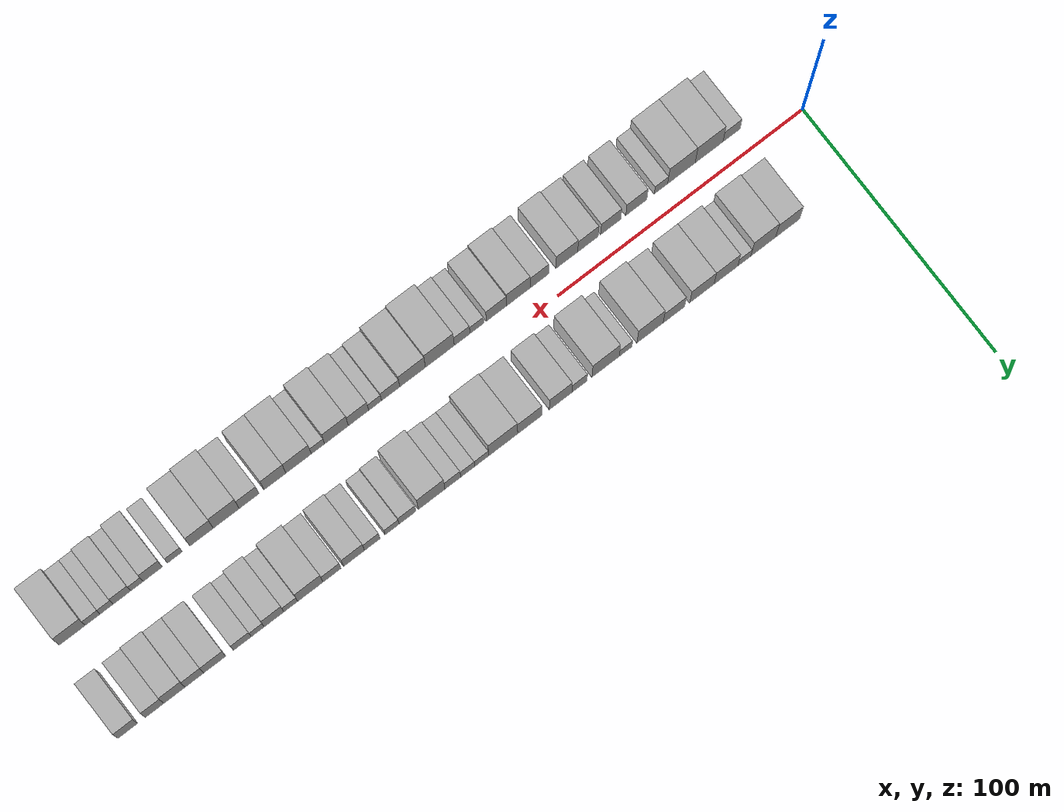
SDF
<sdf version="1.6">
 <world name="default">
  <scene>
   <sky><clouds><speed>12</speed></clouds></sky>
   <ambient>0.4 0.4 0.4 1</ambient>
   <background>0.7 0.7 0.7 1</background>
   <shadows>1</shadows>
  </scene>
  <gravity>0 0 -9.8066</gravity>
  <magnetic_field>6e-06 2.3e-05 -4.2e-05</magnetic_field>
  <physics default="0" name="default_physics" type="ode">
   <ode>
    <solver>
     <type>quick</type>
     <iters>10</iters>
     <sor>1.0</sor>
     <use_dynamic_moi_rescaling>0</use_dynamic_moi_rescaling>
    </solver>
    <constraints>
     <cfm>0</cfm>
     <erp>0.2</erp>
     <contact_max_correcting_vel>100</contact_max_correcting_vel>
     <contact_surface_layer>0.001</contact_surface_layer>
    </constraints>
   </ode>
   <max_step_size>0.004</max_step_size>
   <real_time_factor>1</real_time_factor>
   <real_time_update_rate>250</real_time_update_rate>
  </physics>
  <light name="sun" type="directional">
   <pose>0 0 10 0 0 0</pose>
   <diffuse>0.8 0.8 0.8 1</diffuse>
   <specular>0.2 0.2 0.2 1</specular>
   <attenuation>
    <range>1000</range>
    <constant>0.9</constant>
    <linear>0.01</linear>
    <quadratic>0.001</quadratic>
   </attenuation>
   <direction>-0.5 0.1 -0.9</direction>
  </light>
  <model name="building_1">
   <static>1</static>
   <pose>27.9174 17.5000 0 0.000000 0.000000 1.570796</pose>
   <link name="link">
    <pose>0 0 10.50 0 0 0</pose>
    <collision name="collision"><geometry><box><size>20.0000 9.8348 21.0000</size></box></geometry></collision>
    <visual name="visual">
     <cast_shadows>0</cast_shadows>
     <geometry><box><size>20.0000 9.8348 21.0000</size></box></geometry>
     <material>
      <script>
       <uri>model://HANNAS_wall/materials/scripts</uri>
       <uri>model://HANNAS_wall/materials/textures</uri>
       <name>vrc/HANNAS_wall</name>
      </script>
     </material>
    </visual>
   </link>
  </model>
  <model name="building_2">
   <static>1</static>
   <pose>37.9204 17.5000 0 0.000000 0.000000 1.570796</pose>
   <link name="link">
    <pose>0 0 12.00 0 0 0</pose>
    <collision name="collision"><geometry><box><size>20.0000 10.1712 24.0000</size></box></geometry></collision>
    <visual name="visual">
     <cast_shadows>0</cast_shadows>
     <geometry><box><size>20.0000 10.1712 24.0000</size></box></geometry>
     <material>
      <script>
       <uri>model://HANNAS_wall/materials/scripts</uri>
       <uri>model://HANNAS_wall/materials/textures</uri>
       <name>vrc/HANNAS_wall</name>
      </script>
     </material>
    </visual>
   </link>
  </model>
  <model name="building_3">
   <static>1</static>
   <pose>45.6381 17.5000 0 0.000000 0.000000 1.570796</pose>
   <link name="link">
    <pose>0 0 6.00 0 0 0</pose>
    <collision name="collision"><geometry><box><size>20.0000 5.2643 12.0000</size></box></geometry></collision>
    <visual name="visual">
     <cast_shadows>0</cast_shadows>
     <geometry><box><size>20.0000 5.2643 12.0000</size></box></geometry>
     <material>
      <script>
       <uri>model://HANNAS_wall/materials/scripts</uri>
       <uri>model://HANNAS_wall/materials/textures</uri>
       <name>vrc/HANNAS_wall</name>
      </script>
     </material>
    </visual>
   </link>
  </model>
  <model name="building_4">
   <static>1</static>
   <pose>53.1156 17.5000 0 0.000000 0.000000 1.570796</pose>
   <link name="link">
    <pose>0 0 10.50 0 0 0</pose>
    <collision name="collision"><geometry><box><size>20.0000 9.6906 21.0000</size></box></geometry></collision>
    <visual name="visual">
     <cast_shadows>0</cast_shadows>
     <geometry><box><size>20.0000 9.6906 21.0000</size></box></geometry>
     <material>
      <script>
       <uri>model://HANNAS_wall/materials/scripts</uri>
       <uri>model://HANNAS_wall/materials/textures</uri>
       <name>vrc/HANNAS_wall</name>
      </script>
     </material>
    </visual>
   </link>
  </model>
  <model name="building_5">
   <static>1</static>
   <pose>62.9081 17.5000 0 0.000000 0.000000 1.570796</pose>
   <link name="link">
    <pose>0 0 10.50 0 0 0</pose>
    <collision name="collision"><geometry><box><size>20.0000 9.8944 21.0000</size></box></geometry></collision>
    <visual name="visual">
     <cast_shadows>0</cast_shadows>
     <geometry><box><size>20.0000 9.8944 21.0000</size></box></geometry>
     <material>
      <script>
       <uri>model://HANNAS_wall/materials/scripts</uri>
       <uri>model://HANNAS_wall/materials/textures</uri>
       <name>vrc/HANNAS_wall</name>
      </script>
     </material>
    </visual>
   </link>
  </model>
  <model name="building_6">
   <static>1</static>
   <pose>74.2318 17.5000 0 0.000000 0.000000 1.570796</pose>
   <link name="link">
    <pose>0 0 9.00 0 0 0</pose>
    <collision name="collision"><geometry><box><size>20.0000 8.7530 18.0000</size></box></geometry></collision>
    <visual name="visual">
     <cast_shadows>0</cast_shadows>
     <geometry><box><size>20.0000 8.7530 18.0000</size></box></geometry>
     <material>
      <script>
       <uri>model://HANNAS_wall/materials/scripts</uri>
       <uri>model://HANNAS_wall/materials/textures</uri>
       <name>vrc/HANNAS_wall</name>
      </script>
     </material>
    </visual>
   </link>
  </model>
  <model name="building_7">
   <static>1</static>
   <pose>83.9344 17.5000 0 0.000000 0.000000 1.570796</pose>
   <link name="link">
    <pose>0 0 12.00 0 0 0</pose>
    <collision name="collision"><geometry><box><size>20.0000 10.6521 24.0000</size></box></geometry></collision>
    <visual name="visual">
     <cast_shadows>0</cast_shadows>
     <geometry><box><size>20.0000 10.6521 24.0000</size></box></geometry>
     <material>
      <script>
       <uri>model://HANNAS_wall/materials/scripts</uri>
       <uri>model://HANNAS_wall/materials/textures</uri>
       <name>vrc/HANNAS_wall</name>
      </script>
     </material>
    </visual>
   </link>
  </model>
  <model name="building_8">
   <static>1</static>
   <pose>93.8363 17.5000 0 0.000000 0.000000 1.570796</pose>
   <link name="link">
    <pose>0 0 6.00 0 0 0</pose>
    <collision name="collision"><geometry><box><size>20.0000 5.1517 12.0000</size></box></geometry></collision>
    <visual name="visual">
     <cast_shadows>0</cast_shadows>
     <geometry><box><size>20.0000 5.1517 12.0000</size></box></geometry>
     <material>
      <script>
       <uri>model://HANNAS_wall/materials/scripts</uri>
       <uri>model://HANNAS_wall/materials/textures</uri>
       <name>vrc/HANNAS_wall</name>
      </script>
     </material>
    </visual>
   </link>
  </model>
  <model name="building_9">
   <static>1</static>
   <pose>101.9231 17.5000 0 0.000000 0.000000 1.570796</pose>
   <link name="link">
    <pose>0 0 12.00 0 0 0</pose>
    <collision name="collision"><geometry><box><size>20.0000 11.0219 24.0000</size></box></geometry></collision>
    <visual name="visual">
     <cast_shadows>0</cast_shadows>
     <geometry><box><size>20.0000 11.0219 24.0000</size></box></geometry>
     <material>
      <script>
       <uri>model://HANNAS_wall/materials/scripts</uri>
       <uri>model://HANNAS_wall/materials/textures</uri>
       <name>vrc/HANNAS_wall</name>
      </script>
     </material>
    </visual>
   </link>
  </model>
  <model name="building_10">
   <static>1</static>
   <pose>112.4513 17.5000 0 0.000000 0.000000 1.570796</pose>
   <link name="link">
    <pose>0 0 7.50 0 0 0</pose>
    <collision name="collision"><geometry><box><size>20.0000 6.0345 15.0000</size></box></geometry></collision>
    <visual name="visual">
     <cast_shadows>0</cast_shadows>
     <geometry><box><size>20.0000 6.0345 15.0000</size></box></geometry>
     <material>
      <script>
       <uri>model://HANNAS_wall/materials/scripts</uri>
       <uri>model://HANNAS_wall/materials/textures</uri>
       <name>vrc/HANNAS_wall</name>
      </script>
     </material>
    </visual>
   </link>
  </model>
  <model name="building_11">
   <static>1</static>
   <pose>120.0510 17.5000 0 0.000000 0.000000 1.570796</pose>
   <link name="link">
    <pose>0 0 10.50 0 0 0</pose>
    <collision name="collision"><geometry><box><size>20.0000 9.1649 21.0000</size></box></geometry></collision>
    <visual name="visual">
     <cast_shadows>0</cast_shadows>
     <geometry><box><size>20.0000 9.1649 21.0000</size></box></geometry>
     <material>
      <script>
       <uri>model://HANNAS_wall/materials/scripts</uri>
       <uri>model://HANNAS_wall/materials/textures</uri>
       <name>vrc/HANNAS_wall</name>
      </script>
     </material>
    </visual>
   </link>
  </model>
  <model name="building_12">
   <static>1</static>
   <pose>132.5049 17.5000 0 0.000000 0.000000 1.570796</pose>
   <link name="link">
    <pose>0 0 10.50 0 0 0</pose>
    <collision name="collision"><geometry><box><size>20.0000 9.7430 21.0000</size></box></geometry></collision>
    <visual name="visual">
     <cast_shadows>0</cast_shadows>
     <geometry><box><size>20.0000 9.7430 21.0000</size></box></geometry>
     <material>
      <script>
       <uri>model://HANNAS_wall/materials/scripts</uri>
       <uri>model://HANNAS_wall/materials/textures</uri>
       <name>vrc/HANNAS_wall</name>
      </script>
     </material>
    </visual>
   </link>
  </model>
  <model name="building_13">
   <static>1</static>
   <pose>143.2016 17.5000 0 0.000000 0.000000 1.570796</pose>
   <link name="link">
    <pose>0 0 12.00 0 0 0</pose>
    <collision name="collision"><geometry><box><size>20.0000 11.6503 24.0000</size></box></geometry></collision>
    <visual name="visual">
     <cast_shadows>0</cast_shadows>
     <geometry><box><size>20.0000 11.6503 24.0000</size></box></geometry>
     <material>
      <script>
       <uri>model://HANNAS_wall/materials/scripts</uri>
       <uri>model://HANNAS_wall/materials/textures</uri>
       <name>vrc/HANNAS_wall</name>
      </script>
     </material>
    </visual>
   </link>
  </model>
  <model name="building_14">
   <static>1</static>
   <pose>151.8457 17.5000 0 0.000000 0.000000 1.570796</pose>
   <link name="link">
    <pose>0 0 6.00 0 0 0</pose>
    <collision name="collision"><geometry><box><size>20.0000 5.6377 12.0000</size></box></geometry></collision>
    <visual name="visual">
     <cast_shadows>0</cast_shadows>
     <geometry><box><size>20.0000 5.6377 12.0000</size></box></geometry>
     <material>
      <script>
       <uri>model://HANNAS_wall/materials/scripts</uri>
       <uri>model://HANNAS_wall/materials/textures</uri>
       <name>vrc/HANNAS_wall</name>
      </script>
     </material>
    </visual>
   </link>
  </model>
  <model name="building_15">
   <static>1</static>
   <pose>157.4755 17.5000 0 0.000000 0.000000 1.570796</pose>
   <link name="link">
    <pose>0 0 6.00 0 0 0</pose>
    <collision name="collision"><geometry><box><size>20.0000 5.6219 12.0000</size></box></geometry></collision>
    <visual name="visual">
     <cast_shadows>0</cast_shadows>
     <geometry><box><size>20.0000 5.6219 12.0000</size></box></geometry>
     <material>
      <script>
       <uri>model://HANNAS_wall/materials/scripts</uri>
       <uri>model://HANNAS_wall/materials/textures</uri>
       <name>vrc/HANNAS_wall</name>
      </script>
     </material>
    </visual>
   </link>
  </model>
  <model name="building_16">
   <static>1</static>
   <pose>163.4410 17.5000 0 0.000000 0.000000 1.570796</pose>
   <link name="link">
    <pose>0 0 7.50 0 0 0</pose>
    <collision name="collision"><geometry><box><size>20.0000 6.3091 15.0000</size></box></geometry></collision>
    <visual name="visual">
     <cast_shadows>0</cast_shadows>
     <geometry><box><size>20.0000 6.3091 15.0000</size></box></geometry>
     <material>
      <script>
       <uri>model://HANNAS_wall/materials/scripts</uri>
       <uri>model://HANNAS_wall/materials/textures</uri>
       <name>vrc/HANNAS_wall</name>
      </script>
     </material>
    </visual>
   </link>
  </model>
  <model name="building_17">
   <static>1</static>
   <pose>171.9208 17.5000 0 0.000000 0.000000 1.570796</pose>
   <link name="link">
    <pose>0 0 12.00 0 0 0</pose>
    <collision name="collision"><geometry><box><size>20.0000 10.6506 24.0000</size></box></geometry></collision>
    <visual name="visual">
     <cast_shadows>0</cast_shadows>
     <geometry><box><size>20.0000 10.6506 24.0000</size></box></geometry>
     <material>
      <script>
       <uri>model://HANNAS_wall/materials/scripts</uri>
       <uri>model://HANNAS_wall/materials/textures</uri>
       <name>vrc/HANNAS_wall</name>
      </script>
     </material>
    </visual>
   </link>
  </model>
  <model name="building_18">
   <static>1</static>
   <pose>181.5839 17.5000 0 0.000000 0.000000 1.570796</pose>
   <link name="link">
    <pose>0 0 7.50 0 0 0</pose>
    <collision name="collision"><geometry><box><size>20.0000 6.6756 15.0000</size></box></geometry></collision>
    <visual name="visual">
     <cast_shadows>0</cast_shadows>
     <geometry><box><size>20.0000 6.6756 15.0000</size></box></geometry>
     <material>
      <script>
       <uri>model://HANNAS_wall/materials/scripts</uri>
       <uri>model://HANNAS_wall/materials/textures</uri>
       <name>vrc/HANNAS_wall</name>
      </script>
     </material>
    </visual>
   </link>
  </model>
  <model name="building_19">
   <static>1</static>
   <pose>187.7343 17.5000 0 0.000000 0.000000 1.570796</pose>
   <link name="link">
    <pose>0 0 6.00 0 0 0</pose>
    <collision name="collision"><geometry><box><size>20.0000 5.6251 12.0000</size></box></geometry></collision>
    <visual name="visual">
     <cast_shadows>0</cast_shadows>
     <geometry><box><size>20.0000 5.6251 12.0000</size></box></geometry>
     <material>
      <script>
       <uri>model://HANNAS_wall/materials/scripts</uri>
       <uri>model://HANNAS_wall/materials/textures</uri>
       <name>vrc/HANNAS_wall</name>
      </script>
     </material>
    </visual>
   </link>
  </model>
  <model name="building_20">
   <static>1</static>
   <pose>195.6751 17.5000 0 0.000000 0.000000 1.570796</pose>
   <link name="link">
    <pose>0 0 7.50 0 0 0</pose>
    <collision name="collision"><geometry><box><size>20.0000 6.2567 15.0000</size></box></geometry></collision>
    <visual name="visual">
     <cast_shadows>0</cast_shadows>
     <geometry><box><size>20.0000 6.2567 15.0000</size></box></geometry>
     <material>
      <script>
       <uri>model://HANNAS_wall/materials/scripts</uri>
       <uri>model://HANNAS_wall/materials/textures</uri>
       <name>vrc/HANNAS_wall</name>
      </script>
     </material>
    </visual>
   </link>
  </model>
  <model name="building_21">
   <static>1</static>
   <pose>202.9608 17.5000 0 0.000000 0.000000 1.570796</pose>
   <link name="link">
    <pose>0 0 9.00 0 0 0</pose>
    <collision name="collision"><geometry><box><size>20.0000 8.3146 18.0000</size></box></geometry></collision>
    <visual name="visual">
     <cast_shadows>0</cast_shadows>
     <geometry><box><size>20.0000 8.3146 18.0000</size></box></geometry>
     <material>
      <script>
       <uri>model://HANNAS_wall/materials/scripts</uri>
       <uri>model://HANNAS_wall/materials/textures</uri>
       <name>vrc/HANNAS_wall</name>
      </script>
     </material>
    </visual>
   </link>
  </model>
  <model name="building_22">
   <static>1</static>
   <pose>211.7197 17.5000 0 0.000000 0.000000 1.570796</pose>
   <link name="link">
    <pose>0 0 7.50 0 0 0</pose>
    <collision name="collision"><geometry><box><size>20.0000 7.2033 15.0000</size></box></geometry></collision>
    <visual name="visual">
     <cast_shadows>0</cast_shadows>
     <geometry><box><size>20.0000 7.2033 15.0000</size></box></geometry>
     <material>
      <script>
       <uri>model://HANNAS_wall/materials/scripts</uri>
       <uri>model://HANNAS_wall/materials/textures</uri>
       <name>vrc/HANNAS_wall</name>
      </script>
     </material>
    </visual>
   </link>
  </model>
  <model name="building_23">
   <static>1</static>
   <pose>220.3678 17.5000 0 0.000000 0.000000 1.570796</pose>
   <link name="link">
    <pose>0 0 10.50 0 0 0</pose>
    <collision name="collision"><geometry><box><size>20.0000 10.0928 21.0000</size></box></geometry></collision>
    <visual name="visual">
     <cast_shadows>0</cast_shadows>
     <geometry><box><size>20.0000 10.0928 21.0000</size></box></geometry>
     <material>
      <script>
       <uri>model://HANNAS_wall/materials/scripts</uri>
       <uri>model://HANNAS_wall/materials/textures</uri>
       <name>vrc/HANNAS_wall</name>
      </script>
     </material>
    </visual>
   </link>
  </model>
  <model name="building_24">
   <static>1</static>
   <pose>228.1583 17.5000 0 0.000000 0.000000 1.570796</pose>
   <link name="link">
    <pose>0 0 6.00 0 0 0</pose>
    <collision name="collision"><geometry><box><size>20.0000 5.4883 12.0000</size></box></geometry></collision>
    <visual name="visual">
     <cast_shadows>0</cast_shadows>
     <geometry><box><size>20.0000 5.4883 12.0000</size></box></geometry>
     <material>
      <script>
       <uri>model://HANNAS_wall/materials/scripts</uri>
       <uri>model://HANNAS_wall/materials/textures</uri>
       <name>vrc/HANNAS_wall</name>
      </script>
     </material>
    </visual>
   </link>
  </model>
  <model name="building_25">
   <static>1</static>
   <pose>234.7926 17.5000 0 0.000000 0.000000 1.570796</pose>
   <link name="link">
    <pose>0 0 9.00 0 0 0</pose>
    <collision name="collision"><geometry><box><size>20.0000 7.7801 18.0000</size></box></geometry></collision>
    <visual name="visual">
     <cast_shadows>0</cast_shadows>
     <geometry><box><size>20.0000 7.7801 18.0000</size></box></geometry>
     <material>
      <script>
       <uri>model://HANNAS_wall/materials/scripts</uri>
       <uri>model://HANNAS_wall/materials/textures</uri>
       <name>vrc/HANNAS_wall</name>
      </script>
     </material>
    </visual>
   </link>
  </model>
  <model name="building_26">
   <static>1</static>
   <pose>241.2350 17.5000 0 0.000000 0.000000 1.570796</pose>
   <link name="link">
    <pose>0 0 6.00 0 0 0</pose>
    <collision name="collision"><geometry><box><size>20.0000 5.1048 12.0000</size></box></geometry></collision>
    <visual name="visual">
     <cast_shadows>0</cast_shadows>
     <geometry><box><size>20.0000 5.1048 12.0000</size></box></geometry>
     <material>
      <script>
       <uri>model://HANNAS_wall/materials/scripts</uri>
       <uri>model://HANNAS_wall/materials/textures</uri>
       <name>vrc/HANNAS_wall</name>
      </script>
     </material>
    </visual>
   </link>
  </model>
  <model name="building_27">
   <static>1</static>
   <pose>247.3665 17.5000 0 0.000000 0.000000 1.570796</pose>
   <link name="link">
    <pose>0 0 7.50 0 0 0</pose>
    <collision name="collision"><geometry><box><size>20.0000 7.1582 15.0000</size></box></geometry></collision>
    <visual name="visual">
     <cast_shadows>0</cast_shadows>
     <geometry><box><size>20.0000 7.1582 15.0000</size></box></geometry>
     <material>
      <script>
       <uri>model://HANNAS_wall/materials/scripts</uri>
       <uri>model://HANNAS_wall/materials/textures</uri>
       <name>vrc/HANNAS_wall</name>
      </script>
     </material>
    </visual>
   </link>
  </model>
  <model name="building_28">
   <static>1</static>
   <pose>258.2978 17.5000 0 0.000000 0.000000 1.570796</pose>
   <link name="link">
    <pose>0 0 9.00 0 0 0</pose>
    <collision name="collision"><geometry><box><size>20.0000 8.7044 18.0000</size></box></geometry></collision>
    <visual name="visual">
     <cast_shadows>0</cast_shadows>
     <geometry><box><size>20.0000 8.7044 18.0000</size></box></geometry>
     <material>
      <script>
       <uri>model://HANNAS_wall/materials/scripts</uri>
       <uri>model://HANNAS_wall/materials/textures</uri>
       <name>vrc/HANNAS_wall</name>
      </script>
     </material>
    </visual>
   </link>
  </model>
  <model name="building_29">
   <static>1</static>
   <pose>266.3484 17.5000 0 0.000000 0.000000 1.570796</pose>
   <link name="link">
    <pose>0 0 9.00 0 0 0</pose>
    <collision name="collision"><geometry><box><size>20.0000 7.3968 18.0000</size></box></geometry></collision>
    <visual name="visual">
     <cast_shadows>0</cast_shadows>
     <geometry><box><size>20.0000 7.3968 18.0000</size></box></geometry>
     <material>
      <script>
       <uri>model://HANNAS_wall/materials/scripts</uri>
       <uri>model://HANNAS_wall/materials/textures</uri>
       <name>vrc/HANNAS_wall</name>
      </script>
     </material>
    </visual>
   </link>
  </model>
  <model name="building_30">
   <static>1</static>
   <pose>274.2600 17.5000 0 0.000000 0.000000 1.570796</pose>
   <link name="link">
    <pose>0 0 10.50 0 0 0</pose>
    <collision name="collision"><geometry><box><size>20.0000 8.4264 21.0000</size></box></geometry></collision>
    <visual name="visual">
     <cast_shadows>0</cast_shadows>
     <geometry><box><size>20.0000 8.4264 21.0000</size></box></geometry>
     <material>
      <script>
       <uri>model://HANNAS_wall/materials/scripts</uri>
       <uri>model://HANNAS_wall/materials/textures</uri>
       <name>vrc/HANNAS_wall</name>
      </script>
     </material>
    </visual>
   </link>
  </model>
  <model name="building_31">
   <static>1</static>
   <pose>282.1280 17.5000 0 0.000000 0.000000 1.570796</pose>
   <link name="link">
    <pose>0 0 9.00 0 0 0</pose>
    <collision name="collision"><geometry><box><size>20.0000 7.3095 18.0000</size></box></geometry></collision>
    <visual name="visual">
     <cast_shadows>0</cast_shadows>
     <geometry><box><size>20.0000 7.3095 18.0000</size></box></geometry>
     <material>
      <script>
       <uri>model://HANNAS_wall/materials/scripts</uri>
       <uri>model://HANNAS_wall/materials/textures</uri>
       <name>vrc/HANNAS_wall</name>
      </script>
     </material>
    </visual>
   </link>
  </model>
  <model name="building_32">
   <static>1</static>
   <pose>292.6877 17.5000 0 0.000000 0.000000 1.570796</pose>
   <link name="link">
    <pose>0 0 9.00 0 0 0</pose>
    <collision name="collision"><geometry><box><size>20.0000 7.8099 18.0000</size></box></geometry></collision>
    <visual name="visual">
     <cast_shadows>0</cast_shadows>
     <geometry><box><size>20.0000 7.8099 18.0000</size></box></geometry>
     <material>
      <script>
       <uri>model://HANNAS_wall/materials/scripts</uri>
       <uri>model://HANNAS_wall/materials/textures</uri>
       <name>vrc/HANNAS_wall</name>
      </script>
     </material>
    </visual>
   </link>
  </model>
  <model name="building_33">
   <static>1</static>
   <pose>23.4908 -17.5000 0 0.000000 0.000000 1.570796</pose>
   <link name="link">
    <pose>0 0 7.50 0 0 0</pose>
    <collision name="collision"><geometry><box><size>20.0000 6.9815 15.0000</size></box></geometry></collision>
    <visual name="visual">
     <cast_shadows>0</cast_shadows>
     <geometry><box><size>20.0000 6.9815 15.0000</size></box></geometry>
     <material>
      <script>
       <uri>model://HANNAS_wall/materials/scripts</uri>
       <uri>model://HANNAS_wall/materials/textures</uri>
       <name>vrc/HANNAS_wall</name>
      </script>
     </material>
    </visual>
   </link>
  </model>
  <model name="building_34">
   <static>1</static>
   <pose>32.6551 -17.5000 0 0.000000 0.000000 1.570796</pose>
   <link name="link">
    <pose>0 0 12.00 0 0 0</pose>
    <collision name="collision"><geometry><box><size>20.0000 11.3472 24.0000</size></box></geometry></collision>
    <visual name="visual">
     <cast_shadows>0</cast_shadows>
     <geometry><box><size>20.0000 11.3472 24.0000</size></box></geometry>
     <material>
      <script>
       <uri>model://HANNAS_wall/materials/scripts</uri>
       <uri>model://HANNAS_wall/materials/textures</uri>
       <name>vrc/HANNAS_wall</name>
      </script>
     </material>
    </visual>
   </link>
  </model>
  <model name="building_35">
   <static>1</static>
   <pose>43.9416 -17.5000 0 0.000000 0.000000 1.570796</pose>
   <link name="link">
    <pose>0 0 12.00 0 0 0</pose>
    <collision name="collision"><geometry><box><size>20.0000 11.2258 24.0000</size></box></geometry></collision>
    <visual name="visual">
     <cast_shadows>0</cast_shadows>
     <geometry><box><size>20.0000 11.2258 24.0000</size></box></geometry>
     <material>
      <script>
       <uri>model://HANNAS_wall/materials/scripts</uri>
       <uri>model://HANNAS_wall/materials/textures</uri>
       <name>vrc/HANNAS_wall</name>
      </script>
     </material>
    </visual>
   </link>
  </model>
  <model name="building_36">
   <static>1</static>
   <pose>52.3091 -17.5000 0 0.000000 0.000000 1.570796</pose>
   <link name="link">
    <pose>0 0 6.00 0 0 0</pose>
    <collision name="collision"><geometry><box><size>20.0000 5.5093 12.0000</size></box></geometry></collision>
    <visual name="visual">
     <cast_shadows>0</cast_shadows>
     <geometry><box><size>20.0000 5.5093 12.0000</size></box></geometry>
     <material>
      <script>
       <uri>model://HANNAS_wall/materials/scripts</uri>
       <uri>model://HANNAS_wall/materials/textures</uri>
       <name>vrc/HANNAS_wall</name>
      </script>
     </material>
    </visual>
   </link>
  </model>
  <model name="building_37">
   <static>1</static>
   <pose>62.3523 -17.5000 0 0.000000 0.000000 1.570796</pose>
   <link name="link">
    <pose>0 0 9.00 0 0 0</pose>
    <collision name="collision"><geometry><box><size>20.0000 8.5772 18.0000</size></box></geometry></collision>
    <visual name="visual">
     <cast_shadows>0</cast_shadows>
     <geometry><box><size>20.0000 8.5772 18.0000</size></box></geometry>
     <material>
      <script>
       <uri>model://HANNAS_wall/materials/scripts</uri>
       <uri>model://HANNAS_wall/materials/textures</uri>
       <name>vrc/HANNAS_wall</name>
      </script>
     </material>
    </visual>
   </link>
  </model>
  <model name="building_38">
   <static>1</static>
   <pose>72.7440 -17.5000 0 0.000000 0.000000 1.570796</pose>
   <link name="link">
    <pose>0 0 9.00 0 0 0</pose>
    <collision name="collision"><geometry><box><size>20.0000 8.2061 18.0000</size></box></geometry></collision>
    <visual name="visual">
     <cast_shadows>0</cast_shadows>
     <geometry><box><size>20.0000 8.2061 18.0000</size></box></geometry>
     <material>
      <script>
       <uri>model://HANNAS_wall/materials/scripts</uri>
       <uri>model://HANNAS_wall/materials/textures</uri>
       <name>vrc/HANNAS_wall</name>
      </script>
     </material>
    </visual>
   </link>
  </model>
  <model name="building_39">
   <static>1</static>
   <pose>81.9898 -17.5000 0 0.000000 0.000000 1.570796</pose>
   <link name="link">
    <pose>0 0 9.00 0 0 0</pose>
    <collision name="collision"><geometry><box><size>20.0000 8.2856 18.0000</size></box></geometry></collision>
    <visual name="visual">
     <cast_shadows>0</cast_shadows>
     <geometry><box><size>20.0000 8.2856 18.0000</size></box></geometry>
     <material>
      <script>
       <uri>model://HANNAS_wall/materials/scripts</uri>
       <uri>model://HANNAS_wall/materials/textures</uri>
       <name>vrc/HANNAS_wall</name>
      </script>
     </material>
    </visual>
   </link>
  </model>
  <model name="building_40">
   <static>1</static>
   <pose>90.5377 -17.5000 0 0.000000 0.000000 1.570796</pose>
   <link name="link">
    <pose>0 0 10.50 0 0 0</pose>
    <collision name="collision"><geometry><box><size>20.0000 8.8101 21.0000</size></box></geometry></collision>
    <visual name="visual">
     <cast_shadows>0</cast_shadows>
     <geometry><box><size>20.0000 8.8101 21.0000</size></box></geometry>
     <material>
      <script>
       <uri>model://HANNAS_wall/materials/scripts</uri>
       <uri>model://HANNAS_wall/materials/textures</uri>
       <name>vrc/HANNAS_wall</name>
      </script>
     </material>
    </visual>
   </link>
  </model>
  <model name="building_41">
   <static>1</static>
   <pose>101.6637 -17.5000 0 0.000000 0.000000 1.570796</pose>
   <link name="link">
    <pose>0 0 9.00 0 0 0</pose>
    <collision name="collision"><geometry><box><size>20.0000 7.4419 18.0000</size></box></geometry></collision>
    <visual name="visual">
     <cast_shadows>0</cast_shadows>
     <geometry><box><size>20.0000 7.4419 18.0000</size></box></geometry>
     <material>
      <script>
       <uri>model://HANNAS_wall/materials/scripts</uri>
       <uri>model://HANNAS_wall/materials/textures</uri>
       <name>vrc/HANNAS_wall</name>
      </script>
     </material>
    </visual>
   </link>
  </model>
  <model name="building_42">
   <static>1</static>
   <pose>110.1735 -17.5000 0 0.000000 0.000000 1.570796</pose>
   <link name="link">
    <pose>0 0 10.50 0 0 0</pose>
    <collision name="collision"><geometry><box><size>20.0000 9.5776 21.0000</size></box></geometry></collision>
    <visual name="visual">
     <cast_shadows>0</cast_shadows>
     <geometry><box><size>20.0000 9.5776 21.0000</size></box></geometry>
     <material>
      <script>
       <uri>model://HANNAS_wall/materials/scripts</uri>
       <uri>model://HANNAS_wall/materials/textures</uri>
       <name>vrc/HANNAS_wall</name>
      </script>
     </material>
    </visual>
   </link>
  </model>
  <model name="building_43">
   <static>1</static>
   <pose>119.0694 -17.5000 0 0.000000 0.000000 1.570796</pose>
   <link name="link">
    <pose>0 0 9.00 0 0 0</pose>
    <collision name="collision"><geometry><box><size>20.0000 8.2141 18.0000</size></box></geometry></collision>
    <visual name="visual">
     <cast_shadows>0</cast_shadows>
     <geometry><box><size>20.0000 8.2141 18.0000</size></box></geometry>
     <material>
      <script>
       <uri>model://HANNAS_wall/materials/scripts</uri>
       <uri>model://HANNAS_wall/materials/textures</uri>
       <name>vrc/HANNAS_wall</name>
      </script>
     </material>
    </visual>
   </link>
  </model>
  <model name="building_44">
   <static>1</static>
   <pose>126.9564 -17.5000 0 0.000000 0.000000 1.570796</pose>
   <link name="link">
    <pose>0 0 6.00 0 0 0</pose>
    <collision name="collision"><geometry><box><size>20.0000 5.5599 12.0000</size></box></geometry></collision>
    <visual name="visual">
     <cast_shadows>0</cast_shadows>
     <geometry><box><size>20.0000 5.5599 12.0000</size></box></geometry>
     <material>
      <script>
       <uri>model://HANNAS_wall/materials/scripts</uri>
       <uri>model://HANNAS_wall/materials/textures</uri>
       <name>vrc/HANNAS_wall</name>
      </script>
     </material>
    </visual>
   </link>
  </model>
  <model name="building_45">
   <static>1</static>
   <pose>132.8987 -17.5000 0 0.000000 0.000000 1.570796</pose>
   <link name="link">
    <pose>0 0 7.50 0 0 0</pose>
    <collision name="collision"><geometry><box><size>20.0000 6.3248 15.0000</size></box></geometry></collision>
    <visual name="visual">
     <cast_shadows>0</cast_shadows>
     <geometry><box><size>20.0000 6.3248 15.0000</size></box></geometry>
     <material>
      <script>
       <uri>model://HANNAS_wall/materials/scripts</uri>
       <uri>model://HANNAS_wall/materials/textures</uri>
       <name>vrc/HANNAS_wall</name>
      </script>
     </material>
    </visual>
   </link>
  </model>
  <model name="building_46">
   <static>1</static>
   <pose>141.8636 -17.5000 0 0.000000 0.000000 1.570796</pose>
   <link name="link">
    <pose>0 0 12.00 0 0 0</pose>
    <collision name="collision"><geometry><box><size>20.0000 11.6049 24.0000</size></box></geometry></collision>
    <visual name="visual">
     <cast_shadows>0</cast_shadows>
     <geometry><box><size>20.0000 11.6049 24.0000</size></box></geometry>
     <material>
      <script>
       <uri>model://HANNAS_wall/materials/scripts</uri>
       <uri>model://HANNAS_wall/materials/textures</uri>
       <name>vrc/HANNAS_wall</name>
      </script>
     </material>
    </visual>
   </link>
  </model>
  <model name="building_47">
   <static>1</static>
   <pose>152.8228 -17.5000 0 0.000000 0.000000 1.570796</pose>
   <link name="link">
    <pose>0 0 10.50 0 0 0</pose>
    <collision name="collision"><geometry><box><size>20.0000 10.3136 21.0000</size></box></geometry></collision>
    <visual name="visual">
     <cast_shadows>0</cast_shadows>
     <geometry><box><size>20.0000 10.3136 21.0000</size></box></geometry>
     <material>
      <script>
       <uri>model://HANNAS_wall/materials/scripts</uri>
       <uri>model://HANNAS_wall/materials/textures</uri>
       <name>vrc/HANNAS_wall</name>
      </script>
     </material>
    </visual>
   </link>
  </model>
  <model name="building_48">
   <static>1</static>
   <pose>161.6515 -17.5000 0 0.000000 0.000000 1.570796</pose>
   <link name="link">
    <pose>0 0 7.50 0 0 0</pose>
    <collision name="collision"><geometry><box><size>20.0000 7.3437 15.0000</size></box></geometry></collision>
    <visual name="visual">
     <cast_shadows>0</cast_shadows>
     <geometry><box><size>20.0000 7.3437 15.0000</size></box></geometry>
     <material>
      <script>
       <uri>model://HANNAS_wall/materials/scripts</uri>
       <uri>model://HANNAS_wall/materials/textures</uri>
       <name>vrc/HANNAS_wall</name>
      </script>
     </material>
    </visual>
   </link>
  </model>
  <model name="building_49">
   <static>1</static>
   <pose>167.9125 -17.5000 0 0.000000 0.000000 1.570796</pose>
   <link name="link">
    <pose>0 0 6.00 0 0 0</pose>
    <collision name="collision"><geometry><box><size>20.0000 5.1783 12.0000</size></box></geometry></collision>
    <visual name="visual">
     <cast_shadows>0</cast_shadows>
     <geometry><box><size>20.0000 5.1783 12.0000</size></box></geometry>
     <material>
      <script>
       <uri>model://HANNAS_wall/materials/scripts</uri>
       <uri>model://HANNAS_wall/materials/textures</uri>
       <name>vrc/HANNAS_wall</name>
      </script>
     </material>
    </visual>
   </link>
  </model>
  <model name="building_50">
   <static>1</static>
   <pose>174.5555 -17.5000 0 0.000000 0.000000 1.570796</pose>
   <link name="link">
    <pose>0 0 9.00 0 0 0</pose>
    <collision name="collision"><geometry><box><size>20.0000 8.1077 18.0000</size></box></geometry></collision>
    <visual name="visual">
     <cast_shadows>0</cast_shadows>
     <geometry><box><size>20.0000 8.1077 18.0000</size></box></geometry>
     <material>
      <script>
       <uri>model://HANNAS_wall/materials/scripts</uri>
       <uri>model://HANNAS_wall/materials/textures</uri>
       <name>vrc/HANNAS_wall</name>
      </script>
     </material>
    </visual>
   </link>
  </model>
  <model name="building_51">
   <static>1</static>
   <pose>183.3795 -17.5000 0 0.000000 0.000000 1.570796</pose>
   <link name="link">
    <pose>0 0 10.50 0 0 0</pose>
    <collision name="collision"><geometry><box><size>20.0000 9.5402 21.0000</size></box></geometry></collision>
    <visual name="visual">
     <cast_shadows>0</cast_shadows>
     <geometry><box><size>20.0000 9.5402 21.0000</size></box></geometry>
     <material>
      <script>
       <uri>model://HANNAS_wall/materials/scripts</uri>
       <uri>model://HANNAS_wall/materials/textures</uri>
       <name>vrc/HANNAS_wall</name>
      </script>
     </material>
    </visual>
   </link>
  </model>
  <model name="building_52">
   <static>1</static>
   <pose>190.8176 -17.5000 0 0.000000 0.000000 1.570796</pose>
   <link name="link">
    <pose>0 0 6.00 0 0 0</pose>
    <collision name="collision"><geometry><box><size>20.0000 5.3360 12.0000</size></box></geometry></collision>
    <visual name="visual">
     <cast_shadows>0</cast_shadows>
     <geometry><box><size>20.0000 5.3360 12.0000</size></box></geometry>
     <material>
      <script>
       <uri>model://HANNAS_wall/materials/scripts</uri>
       <uri>model://HANNAS_wall/materials/textures</uri>
       <name>vrc/HANNAS_wall</name>
      </script>
     </material>
    </visual>
   </link>
  </model>
  <model name="building_53">
   <static>1</static>
   <pose>198.5535 -17.5000 0 0.000000 0.000000 1.570796</pose>
   <link name="link">
    <pose>0 0 10.50 0 0 0</pose>
    <collision name="collision"><geometry><box><size>20.0000 10.1357 21.0000</size></box></geometry></collision>
    <visual name="visual">
     <cast_shadows>0</cast_shadows>
     <geometry><box><size>20.0000 10.1357 21.0000</size></box></geometry>
     <material>
      <script>
       <uri>model://HANNAS_wall/materials/scripts</uri>
       <uri>model://HANNAS_wall/materials/textures</uri>
       <name>vrc/HANNAS_wall</name>
      </script>
     </material>
    </visual>
   </link>
  </model>
  <model name="building_54">
   <static>1</static>
   <pose>208.0054 -17.5000 0 0.000000 0.000000 1.570796</pose>
   <link name="link">
    <pose>0 0 10.50 0 0 0</pose>
    <collision name="collision"><geometry><box><size>20.0000 8.7681 21.0000</size></box></geometry></collision>
    <visual name="visual">
     <cast_shadows>0</cast_shadows>
     <geometry><box><size>20.0000 8.7681 21.0000</size></box></geometry>
     <material>
      <script>
       <uri>model://HANNAS_wall/materials/scripts</uri>
       <uri>model://HANNAS_wall/materials/textures</uri>
       <name>vrc/HANNAS_wall</name>
      </script>
     </material>
    </visual>
   </link>
  </model>
  <model name="building_55">
   <static>1</static>
   <pose>218.3244 -17.5000 0 0.000000 0.000000 1.570796</pose>
   <link name="link">
    <pose>0 0 9.00 0 0 0</pose>
    <collision name="collision"><geometry><box><size>20.0000 7.8699 18.0000</size></box></geometry></collision>
    <visual name="visual">
     <cast_shadows>0</cast_shadows>
     <geometry><box><size>20.0000 7.8699 18.0000</size></box></geometry>
     <material>
      <script>
       <uri>model://HANNAS_wall/materials/scripts</uri>
       <uri>model://HANNAS_wall/materials/textures</uri>
       <name>vrc/HANNAS_wall</name>
      </script>
     </material>
    </visual>
   </link>
  </model>
  <model name="building_56">
   <static>1</static>
   <pose>227.4224 -17.5000 0 0.000000 0.000000 1.570796</pose>
   <link name="link">
    <pose>0 0 12.00 0 0 0</pose>
    <collision name="collision"><geometry><box><size>20.0000 10.3261 24.0000</size></box></geometry></collision>
    <visual name="visual">
     <cast_shadows>0</cast_shadows>
     <geometry><box><size>20.0000 10.3261 24.0000</size></box></geometry>
     <material>
      <script>
       <uri>model://HANNAS_wall/materials/scripts</uri>
       <uri>model://HANNAS_wall/materials/textures</uri>
       <name>vrc/HANNAS_wall</name>
      </script>
     </material>
    </visual>
   </link>
  </model>
  <model name="building_57">
   <static>1</static>
   <pose>237.2418 -17.5000 0 0.000000 0.000000 1.570796</pose>
   <link name="link">
    <pose>0 0 10.50 0 0 0</pose>
    <collision name="collision"><geometry><box><size>20.0000 9.3127 21.0000</size></box></geometry></collision>
    <visual name="visual">
     <cast_shadows>0</cast_shadows>
     <geometry><box><size>20.0000 9.3127 21.0000</size></box></geometry>
     <material>
      <script>
       <uri>model://HANNAS_wall/materials/scripts</uri>
       <uri>model://HANNAS_wall/materials/textures</uri>
       <name>vrc/HANNAS_wall</name>
      </script>
     </material>
    </visual>
   </link>
  </model>
  <model name="building_58">
   <static>1</static>
   <pose>247.8641 -17.5000 0 0.000000 0.000000 1.570796</pose>
   <link name="link">
    <pose>0 0 6.00 0 0 0</pose>
    <collision name="collision"><geometry><box><size>20.0000 5.9320 12.0000</size></box></geometry></collision>
    <visual name="visual">
     <cast_shadows>0</cast_shadows>
     <geometry><box><size>20.0000 5.9320 12.0000</size></box></geometry>
     <material>
      <script>
       <uri>model://HANNAS_wall/materials/scripts</uri>
       <uri>model://HANNAS_wall/materials/textures</uri>
       <name>vrc/HANNAS_wall</name>
      </script>
     </material>
    </visual>
   </link>
  </model>
  <model name="building_59">
   <static>1</static>
   <pose>256.6462 -17.5000 0 0.000000 0.000000 1.570796</pose>
   <link name="link">
    <pose>0 0 9.00 0 0 0</pose>
    <collision name="collision"><geometry><box><size>20.0000 7.6322 18.0000</size></box></geometry></collision>
    <visual name="visual">
     <cast_shadows>0</cast_shadows>
     <geometry><box><size>20.0000 7.6322 18.0000</size></box></geometry>
     <material>
      <script>
       <uri>model://HANNAS_wall/materials/scripts</uri>
       <uri>model://HANNAS_wall/materials/textures</uri>
       <name>vrc/HANNAS_wall</name>
      </script>
     </material>
    </visual>
   </link>
  </model>
  <model name="building_60">
   <static>1</static>
   <pose>262.9153 -17.5000 0 0.000000 0.000000 1.570796</pose>
   <link name="link">
    <pose>0 0 6.00 0 0 0</pose>
    <collision name="collision"><geometry><box><size>20.0000 4.9061 12.0000</size></box></geometry></collision>
    <visual name="visual">
     <cast_shadows>0</cast_shadows>
     <geometry><box><size>20.0000 4.9061 12.0000</size></box></geometry>
     <material>
      <script>
       <uri>model://HANNAS_wall/materials/scripts</uri>
       <uri>model://HANNAS_wall/materials/textures</uri>
       <name>vrc/HANNAS_wall</name>
      </script>
     </material>
    </visual>
   </link>
  </model>
  <model name="building_61">
   <static>1</static>
   <pose>268.8503 -17.5000 0 0.000000 0.000000 1.570796</pose>
   <link name="link">
    <pose>0 0 7.50 0 0 0</pose>
    <collision name="collision"><geometry><box><size>20.0000 6.9639 15.0000</size></box></geometry></collision>
    <visual name="visual">
     <cast_shadows>0</cast_shadows>
     <geometry><box><size>20.0000 6.9639 15.0000</size></box></geometry>
     <material>
      <script>
       <uri>model://HANNAS_wall/materials/scripts</uri>
       <uri>model://HANNAS_wall/materials/textures</uri>
       <name>vrc/HANNAS_wall</name>
      </script>
     </material>
    </visual>
   </link>
  </model>
  <model name="building_62">
   <static>1</static>
   <pose>274.8856 -17.5000 0 0.000000 0.000000 1.570796</pose>
   <link name="link">
    <pose>0 0 6.00 0 0 0</pose>
    <collision name="collision"><geometry><box><size>20.0000 5.1068 12.0000</size></box></geometry></collision>
    <visual name="visual">
     <cast_shadows>0</cast_shadows>
     <geometry><box><size>20.0000 5.1068 12.0000</size></box></geometry>
     <material>
      <script>
       <uri>model://HANNAS_wall/materials/scripts</uri>
       <uri>model://HANNAS_wall/materials/textures</uri>
       <name>vrc/HANNAS_wall</name>
      </script>
     </material>
    </visual>
   </link>
  </model>
  <model name="building_63">
   <static>1</static>
   <pose>280.3879 -17.5000 0 0.000000 0.000000 1.570796</pose>
   <link name="link">
    <pose>0 0 6.00 0 0 0</pose>
    <collision name="collision"><geometry><box><size>20.0000 5.8977 12.0000</size></box></geometry></collision>
    <visual name="visual">
     <cast_shadows>0</cast_shadows>
     <geometry><box><size>20.0000 5.8977 12.0000</size></box></geometry>
     <material>
      <script>
       <uri>model://HANNAS_wall/materials/scripts</uri>
       <uri>model://HANNAS_wall/materials/textures</uri>
       <name>vrc/HANNAS_wall</name>
      </script>
     </material>
    </visual>
   </link>
  </model>
  <model name="building_64">
   <static>1</static>
   <pose>288.4820 -17.5000 0 0.000000 0.000000 1.570796</pose>
   <link name="link">
    <pose>0 0 10.50 0 0 0</pose>
    <collision name="collision"><geometry><box><size>20.0000 10.2904 21.0000</size></box></geometry></collision>
    <visual name="visual">
     <cast_shadows>0</cast_shadows>
     <geometry><box><size>20.0000 10.2904 21.0000</size></box></geometry>
     <material>
      <script>
       <uri>model://HANNAS_wall/materials/scripts</uri>
       <uri>model://HANNAS_wall/materials/textures</uri>
       <name>vrc/HANNAS_wall</name>
      </script>
     </material>
    </visual>
   </link>
  </model>
 </world>
</sdf>
